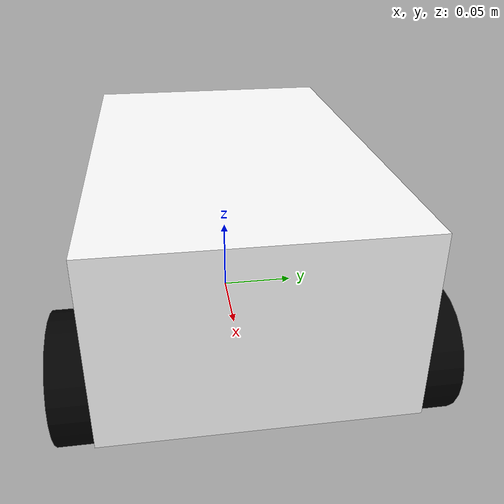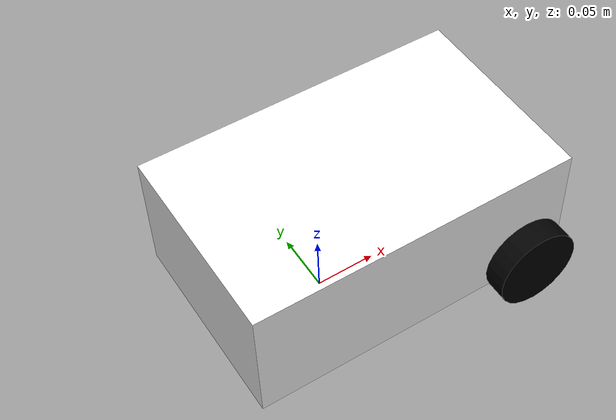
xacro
<?xml version="1.0"?>
<robot xmlns:xacro="http://www.ros.org/wiki/xacro"  name="robot">
    <xacro:include filename = "inertial_macros.xacro"/>
    <material name = "white">
        <color rgba = "1 1 1 1" />
    </material>

    <material name = "black">
        <color rgba = "0 0 0 1" />
    </material>

    <material name = "orange">
        <color rgba = "1 0.3 0.1 1" />
    </material>

    <!-- base link -->
    <link name = "base_link">

    </link>

    <joint name = "base_link" type = "fixed">
        <parent link = "base_link"/>
        <child link = "body"/>
        <origin xyz = "-0.1 0 0"/>
    </joint>

    <!-- body link -->

    <link name = "body">
        <visual>
            <origin xyz = "0.135 0 0.07"/>
            <geometry>
                <box size = "0.27 0.168 0.10577" />
            </geometry>

            <material name = "white"/>
        </visual>

        <collision>
            <origin xyz = "0.135 0 0.07"/>
            <geometry>
                <box size = "0.27 0.168 0.10577" />
            </geometry>
        </collision>
        <xacro:inertial_box mass="0.7" x="0.27" y="0.168" z="0.10577">
            <origin xyz = "0.135 0 0.07" rpy = "0 0 0"/>
        </xacro:inertial_box>
    </link>

    <gazebo reference="body">
        <material>Gazebo/White</material>
    </gazebo>

    <!-- right wheel link -->

    <joint name = "r_wheel_joint" type = "continuous">
        <parent link = "base_link"/>
        <child link = "r_wheel"/>
        <origin xyz = "0.135 -0.094 0.03454" rpy = "${pi/2} 0 0"/>
        <axis xyz = "0 0 -1"/>
    </joint>

    <link name = "r_wheel">
        <visual>
            <geometry>
                <cylinder radius = "0.035" length = "0.020"/>
            </geometry>
            <material name = "black"/>
        </visual>

        <collision>
            <geometry>
                <cylinder radius = "0.035" length = "0.020"/>
            </geometry>
        </collision>

        <xacro:inertial_cylinder mass="0.04" length="0.02" radius="0.035">
            <origin xyz = "0 0 0" rpy = "0 0 0 "/>
        </xacro:inertial_cylinder>

    </link>

    <gazebo reference="r_wheel">
        <material>Gazebo/Black</material>
    </gazebo>

    <!-- left wheel link -->

    <joint name = "l_wheel_joint" type = "continuous">
        <parent link = "base_link"/>
        <child link = "l_wheel"/>
        <origin xyz = "0.135 0.094 0.03454" rpy = "-${pi/2} 0 0"/>
        <axis xyz = "0 0 1"/>
    </joint>

    <link name = "l_wheel">
        <visual>
            <geometry>
                <cylinder radius = "0.035" length = "0.02"/>
            </geometry>
            <material name = "black"/>
        </visual>

        <collision>
            <geometry>
                <cylinder radius = "0.035" length = "0.02"/>
            </geometry>
        </collision>

        <xacro:inertial_cylinder mass="0.04" length="0.02" radius="0.035">
            <origin xyz = "0 0 0" rpy = "0 0 0 "/>
        </xacro:inertial_cylinder>
    </link>

    <gazebo reference="l_wheel">
        <material>Gazebo/Black</material>
    </gazebo>

    <!-- cylinder-->

    <joint name = "cylinder_joint" type = "fixed">
       <parent link = "body"/>
       <child link = "cylinder"/>
       <origin xyz = "0.045 0 0.010615" rpy = "0 0 0"/>

    </joint>

    <link name = "cylinder">
         <visual>
            <geometry>
                <cylinder radius = "0.0075" length = "0.01023"/>
            </geometry>
            <material name = "black"/>
        </visual>

        <collision>
            <geometry>
                <cylinder radius = "0.0075" length = "0.01023"/>
            </geometry>
        </collision>

        <xacro:inertial_cylinder mass="0.001" radius="0.0075" length="0.01023">
            <origin xyz = "0 0 0" rpy = "0 0 0 "/>
        </xacro:inertial_cylinder>

    </link>

    <gazebo reference="cylinder">
        <material>Gazebo/Black</material>
    </gazebo>

    <!-- ball castor-->

    <joint name = "castor_joint" type = "fixed">
        <parent link = "cylinder"/>
        <child link = "castor"/>
        <origin xyz = "0 0 -0.004" rpy = "0 0 0"/>
    </joint>

    <link name = "castor">
         <visual>
            <geometry>
                <sphere radius = "0.0075" />
            </geometry>
            <material name = "orange"/>
        </visual>

        <collision>
            <geometry>
                <sphere radius = "0.0075" />
            </geometry>
        </collision>

        <xacro:inertial_sphere mass="0.01" radius="0.0075">
            <origin xyz = "0 0 0" rpy = "0 0 0 "/>
        </xacro:inertial_sphere>

    </link>

    <gazebo reference="castor">
        <material>Gazebo/Orange</material>
        <mu1 value="0.001"/>
        <mu2 value="0.001"/>
    </gazebo>

</robot>
